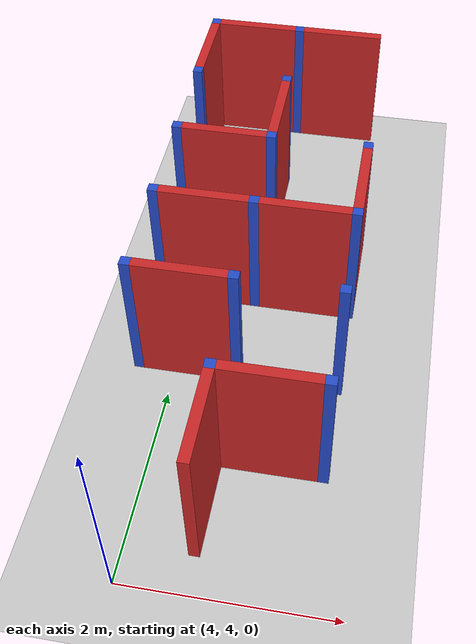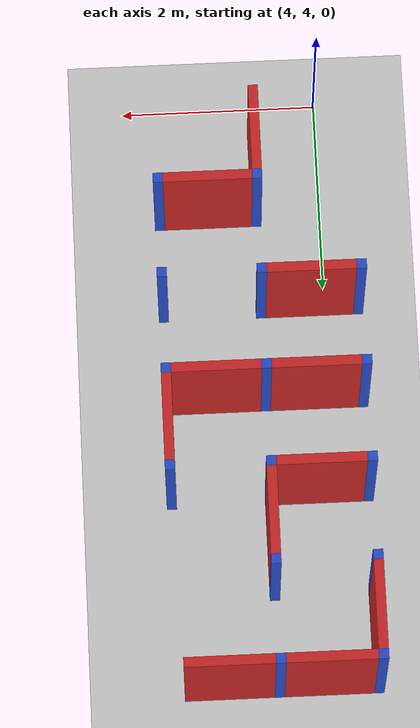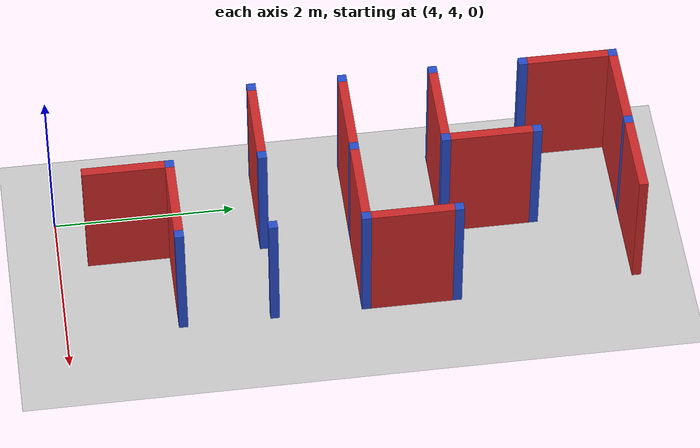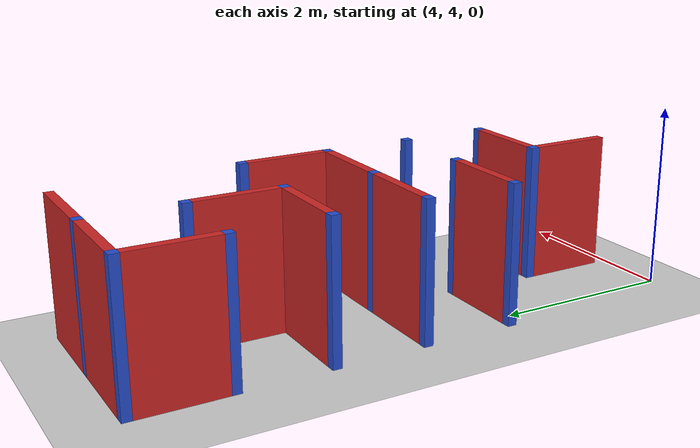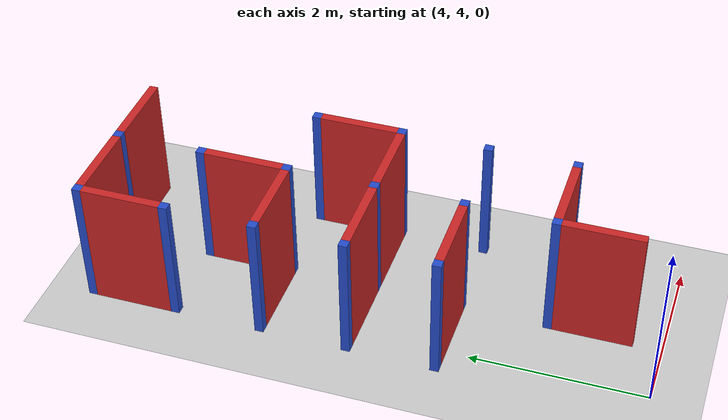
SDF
<sdf version="1.7">
 <world name="default">
  <model name="ground_plane">
   <static>1</static>
   <link name="link">
    <collision name="collision">
     <geometry><plane><normal>0 0 1</normal><size>100 100</size></plane></geometry>
     <surface><friction><ode><mu>100</mu><mu2>50</mu2></ode></friction></surface>
    </collision>
    <visual name="visual">
     <cast_shadows>0</cast_shadows>
     <geometry><plane><normal>0 0 1</normal><size>100 100</size></plane></geometry>
     <material>
      <script><uri>file://media/materials/scripts/gazebo.material</uri><name>Gazebo/Grey</name></script>
     </material>
    </visual>
   </link>
  </model>
  <model name="maze_demo">
   <link name="Joint_10_-10">
    <pose>10 -10 0 0 -0 0</pose>
    <visual name="Wall_2_Visual">
     <pose>0 0 0.75 0 -0 0</pose>
     <geometry><box><size>0.1 0.1 1.5</size></box></geometry>
     <material>
      <script><uri>file://media/materials/scripts/gazebo.material</uri><name>Gazebo/Blue</name></script>
      <ambient>0.996078 0.47451 0.0196078 1</ambient>
      <shader type="pixel"/>
     </material>
     <meta><layer>0</layer></meta>
    </visual>
    <collision name="Wall_2_Collision">
     <pose>0 0 0.75 0 -0 0</pose>
     <geometry><box><size>0.1 0.1 1.5</size></box></geometry>
     <surface>
      <friction>
       <ode><mu>1</mu><mu2>1</mu2><fdir1>0 0 0</fdir1><slip1>0</slip1><slip2>0</slip2></ode>
       <torsional>
        <coefficient>1</coefficient>
        <patch_radius>0</patch_radius>
        <surface_radius>0</surface_radius>
        <use_patch_radius>1</use_patch_radius>
        <ode><slip>0</slip></ode>
       </torsional>
      </friction>
      <bounce><restitution_coefficient>0</restitution_coefficient><threshold>1e+06</threshold></bounce>
      <contact>
       <collide_without_contact>0</collide_without_contact>
       <collide_without_contact_bitmask>1</collide_without_contact_bitmask>
       <collide_bitmask>1</collide_bitmask>
       <ode>
        <soft_cfm>0</soft_cfm>
        <soft_erp>0.2</soft_erp>
        <kp>1e+13</kp>
        <kd>1</kd>
        <max_vel>0.01</max_vel>
        <min_depth>0</min_depth>
       </ode>
       <bullet>
        <split_impulse>1</split_impulse>
        <split_impulse_penetration_threshold>-0.01</split_impulse_penetration_threshold>
        <soft_cfm>0</soft_cfm>
        <soft_erp>0.2</soft_erp>
        <kp>1e+13</kp>
        <kd>1</kd>
       </bullet>
      </contact>
     </surface>
    </collision>
   </link>
   <link name="Joint_10_-5">
    <pose>10 -5 0 0 -0 0</pose>
    <visual name="Wall_2_Visual">
     <pose>0 0 0.75 0 -0 0</pose>
     <geometry><box><size>0.1 0.1 1.5</size></box></geometry>
     <material>
      <script><uri>file://media/materials/scripts/gazebo.material</uri><name>Gazebo/Blue</name></script>
      <ambient>0.996078 0.47451 0.0196078 1</ambient>
      <shader type="pixel"/>
     </material>
     <meta><layer>0</layer></meta>
    </visual>
    <collision name="Wall_2_Collision">
     <pose>0 0 0.75 0 -0 0</pose>
     <geometry><box><size>0.1 0.1 1.5</size></box></geometry>
     <surface>
      <friction>
       <ode><mu>1</mu><mu2>1</mu2><fdir1>0 0 0</fdir1><slip1>0</slip1><slip2>0</slip2></ode>
       <torsional>
        <coefficient>1</coefficient>
        <patch_radius>0</patch_radius>
        <surface_radius>0</surface_radius>
        <use_patch_radius>1</use_patch_radius>
        <ode><slip>0</slip></ode>
       </torsional>
      </friction>
      <bounce><restitution_coefficient>0</restitution_coefficient><threshold>1e+06</threshold></bounce>
      <contact>
       <collide_without_contact>0</collide_without_contact>
       <collide_without_contact_bitmask>1</collide_without_contact_bitmask>
       <collide_bitmask>1</collide_bitmask>
       <ode>
        <soft_cfm>0</soft_cfm>
        <soft_erp>0.2</soft_erp>
        <kp>1e+13</kp>
        <kd>1</kd>
        <max_vel>0.01</max_vel>
        <min_depth>0</min_depth>
       </ode>
       <bullet>
        <split_impulse>1</split_impulse>
        <split_impulse_penetration_threshold>-0.01</split_impulse_penetration_threshold>
        <soft_cfm>0</soft_cfm>
        <soft_erp>0.2</soft_erp>
        <kp>1e+13</kp>
        <kd>1</kd>
       </bullet>
      </contact>
     </surface>
    </collision>
   </link>
   <link name="Joint_10_-6">
    <pose>10 -6 0 0 -0 0</pose>
    <visual name="Wall_2_Visual">
     <pose>0 0 0.75 0 -0 0</pose>
     <geometry><box><size>0.1 0.1 1.5</size></box></geometry>
     <material>
      <script><uri>file://media/materials/scripts/gazebo.material</uri><name>Gazebo/Blue</name></script>
      <ambient>0.996078 0.47451 0.0196078 1</ambient>
      <shader type="pixel"/>
     </material>
     <meta><layer>0</layer></meta>
    </visual>
    <collision name="Wall_2_Collision">
     <pose>0 0 0.75 0 -0 0</pose>
     <geometry><box><size>0.1 0.1 1.5</size></box></geometry>
     <surface>
      <friction>
       <ode><mu>1</mu><mu2>1</mu2><fdir1>0 0 0</fdir1><slip1>0</slip1><slip2>0</slip2></ode>
       <torsional>
        <coefficient>1</coefficient>
        <patch_radius>0</patch_radius>
        <surface_radius>0</surface_radius>
        <use_patch_radius>1</use_patch_radius>
        <ode><slip>0</slip></ode>
       </torsional>
      </friction>
      <bounce><restitution_coefficient>0</restitution_coefficient><threshold>1e+06</threshold></bounce>
      <contact>
       <collide_without_contact>0</collide_without_contact>
       <collide_without_contact_bitmask>1</collide_without_contact_bitmask>
       <collide_bitmask>1</collide_bitmask>
       <ode>
        <soft_cfm>0</soft_cfm>
        <soft_erp>0.2</soft_erp>
        <kp>1e+13</kp>
        <kd>1</kd>
        <max_vel>0.01</max_vel>
        <min_depth>0</min_depth>
       </ode>
       <bullet>
        <split_impulse>1</split_impulse>
        <split_impulse_penetration_threshold>-0.01</split_impulse_penetration_threshold>
        <soft_cfm>0</soft_cfm>
        <soft_erp>0.2</soft_erp>
        <kp>1e+13</kp>
        <kd>1</kd>
       </bullet>
      </contact>
     </surface>
    </collision>
   </link>
   <link name="Joint_10_-7">
    <pose>10 -7 0 0 -0 0</pose>
    <visual name="Wall_2_Visual">
     <pose>0 0 0.75 0 -0 0</pose>
     <geometry><box><size>0.1 0.1 1.5</size></box></geometry>
     <material>
      <script><uri>file://media/materials/scripts/gazebo.material</uri><name>Gazebo/Blue</name></script>
      <ambient>0.996078 0.47451 0.0196078 1</ambient>
      <shader type="pixel"/>
     </material>
     <meta><layer>0</layer></meta>
    </visual>
    <collision name="Wall_2_Collision">
     <pose>0 0 0.75 0 -0 0</pose>
     <geometry><box><size>0.1 0.1 1.5</size></box></geometry>
     <surface>
      <friction>
       <ode><mu>1</mu><mu2>1</mu2><fdir1>0 0 0</fdir1><slip1>0</slip1><slip2>0</slip2></ode>
       <torsional>
        <coefficient>1</coefficient>
        <patch_radius>0</patch_radius>
        <surface_radius>0</surface_radius>
        <use_patch_radius>1</use_patch_radius>
        <ode><slip>0</slip></ode>
       </torsional>
      </friction>
      <bounce><restitution_coefficient>0</restitution_coefficient><threshold>1e+06</threshold></bounce>
      <contact>
       <collide_without_contact>0</collide_without_contact>
       <collide_without_contact_bitmask>1</collide_without_contact_bitmask>
       <collide_bitmask>1</collide_bitmask>
       <ode>
        <soft_cfm>0</soft_cfm>
        <soft_erp>0.2</soft_erp>
        <kp>1e+13</kp>
        <kd>1</kd>
        <max_vel>0.01</max_vel>
        <min_depth>0</min_depth>
       </ode>
       <bullet>
        <split_impulse>1</split_impulse>
        <split_impulse_penetration_threshold>-0.01</split_impulse_penetration_threshold>
        <soft_cfm>0</soft_cfm>
        <soft_erp>0.2</soft_erp>
        <kp>1e+13</kp>
        <kd>1</kd>
       </bullet>
      </contact>
     </surface>
    </collision>
   </link>
   <link name="Joint_10_-8">
    <pose>10 -8 0 0 -0 0</pose>
    <visual name="Wall_2_Visual">
     <pose>0 0 0.75 0 -0 0</pose>
     <geometry><box><size>0.1 0.1 1.5</size></box></geometry>
     <material>
      <script><uri>file://media/materials/scripts/gazebo.material</uri><name>Gazebo/Blue</name></script>
      <ambient>0.996078 0.47451 0.0196078 1</ambient>
      <shader type="pixel"/>
     </material>
     <meta><layer>0</layer></meta>
    </visual>
    <collision name="Wall_2_Collision">
     <pose>0 0 0.75 0 -0 0</pose>
     <geometry><box><size>0.1 0.1 1.5</size></box></geometry>
     <surface>
      <friction>
       <ode><mu>1</mu><mu2>1</mu2><fdir1>0 0 0</fdir1><slip1>0</slip1><slip2>0</slip2></ode>
       <torsional>
        <coefficient>1</coefficient>
        <patch_radius>0</patch_radius>
        <surface_radius>0</surface_radius>
        <use_patch_radius>1</use_patch_radius>
        <ode><slip>0</slip></ode>
       </torsional>
      </friction>
      <bounce><restitution_coefficient>0</restitution_coefficient><threshold>1e+06</threshold></bounce>
      <contact>
       <collide_without_contact>0</collide_without_contact>
       <collide_without_contact_bitmask>1</collide_without_contact_bitmask>
       <collide_bitmask>1</collide_bitmask>
       <ode>
        <soft_cfm>0</soft_cfm>
        <soft_erp>0.2</soft_erp>
        <kp>1e+13</kp>
        <kd>1</kd>
        <max_vel>0.01</max_vel>
        <min_depth>0</min_depth>
       </ode>
       <bullet>
        <split_impulse>1</split_impulse>
        <split_impulse_penetration_threshold>-0.01</split_impulse_penetration_threshold>
        <soft_cfm>0</soft_cfm>
        <soft_erp>0.2</soft_erp>
        <kp>1e+13</kp>
        <kd>1</kd>
       </bullet>
      </contact>
     </surface>
    </collision>
   </link>
   <link name="Joint_10_-9">
    <pose>10 -9 0 0 -0 0</pose>
    <visual name="Wall_2_Visual">
     <pose>0 0 0.75 0 -0 0</pose>
     <geometry><box><size>0.1 0.1 1.5</size></box></geometry>
     <material>
      <script><uri>file://media/materials/scripts/gazebo.material</uri><name>Gazebo/Blue</name></script>
      <ambient>0.996078 0.47451 0.0196078 1</ambient>
      <shader type="pixel"/>
     </material>
     <meta><layer>0</layer></meta>
    </visual>
    <collision name="Wall_2_Collision">
     <pose>0 0 0.75 0 -0 0</pose>
     <geometry><box><size>0.1 0.1 1.5</size></box></geometry>
     <surface>
      <friction>
       <ode><mu>1</mu><mu2>1</mu2><fdir1>0 0 0</fdir1><slip1>0</slip1><slip2>0</slip2></ode>
       <torsional>
        <coefficient>1</coefficient>
        <patch_radius>0</patch_radius>
        <surface_radius>0</surface_radius>
        <use_patch_radius>1</use_patch_radius>
        <ode><slip>0</slip></ode>
       </torsional>
      </friction>
      <bounce><restitution_coefficient>0</restitution_coefficient><threshold>1e+06</threshold></bounce>
      <contact>
       <collide_without_contact>0</collide_without_contact>
       <collide_without_contact_bitmask>1</collide_without_contact_bitmask>
       <collide_bitmask>1</collide_bitmask>
       <ode>
        <soft_cfm>0</soft_cfm>
        <soft_erp>0.2</soft_erp>
        <kp>1e+13</kp>
        <kd>1</kd>
        <max_vel>0.01</max_vel>
        <min_depth>0</min_depth>
       </ode>
       <bullet>
        <split_impulse>1</split_impulse>
        <split_impulse_penetration_threshold>-0.01</split_impulse_penetration_threshold>
        <soft_cfm>0</soft_cfm>
        <soft_erp>0.2</soft_erp>
        <kp>1e+13</kp>
        <kd>1</kd>
       </bullet>
      </contact>
     </surface>
    </collision>
   </link>
   <link name="Joint_11_-10">
    <pose>11 -10 0 0 -0 0</pose>
    <visual name="Wall_2_Visual">
     <pose>0 0 0.75 0 -0 0</pose>
     <geometry><box><size>0.1 0.1 1.5</size></box></geometry>
     <material>
      <script><uri>file://media/materials/scripts/gazebo.material</uri><name>Gazebo/Blue</name></script>
      <ambient>0.996078 0.47451 0.0196078 1</ambient>
      <shader type="pixel"/>
     </material>
     <meta><layer>0</layer></meta>
    </visual>
    <collision name="Wall_2_Collision">
     <pose>0 0 0.75 0 -0 0</pose>
     <geometry><box><size>0.1 0.1 1.5</size></box></geometry>
     <surface>
      <friction>
       <ode><mu>1</mu><mu2>1</mu2><fdir1>0 0 0</fdir1><slip1>0</slip1><slip2>0</slip2></ode>
       <torsional>
        <coefficient>1</coefficient>
        <patch_radius>0</patch_radius>
        <surface_radius>0</surface_radius>
        <use_patch_radius>1</use_patch_radius>
        <ode><slip>0</slip></ode>
       </torsional>
      </friction>
      <bounce><restitution_coefficient>0</restitution_coefficient><threshold>1e+06</threshold></bounce>
      <contact>
       <collide_without_contact>0</collide_without_contact>
       <collide_without_contact_bitmask>1</collide_without_contact_bitmask>
       <collide_bitmask>1</collide_bitmask>
       <ode>
        <soft_cfm>0</soft_cfm>
        <soft_erp>0.2</soft_erp>
        <kp>1e+13</kp>
        <kd>1</kd>
        <max_vel>0.01</max_vel>
        <min_depth>0</min_depth>
       </ode>
       <bullet>
        <split_impulse>1</split_impulse>
        <split_impulse_penetration_threshold>-0.01</split_impulse_penetration_threshold>
        <soft_cfm>0</soft_cfm>
        <soft_erp>0.2</soft_erp>
        <kp>1e+13</kp>
        <kd>1</kd>
       </bullet>
      </contact>
     </surface>
    </collision>
   </link>
   <link name="Joint_11_-7">
    <pose>11 -7 0 0 -0 0</pose>
    <visual name="Wall_2_Visual">
     <pose>0 0 0.75 0 -0 0</pose>
     <geometry><box><size>0.1 0.1 1.5</size></box></geometry>
     <material>
      <script><uri>file://media/materials/scripts/gazebo.material</uri><name>Gazebo/Blue</name></script>
      <ambient>0.996078 0.47451 0.0196078 1</ambient>
      <shader type="pixel"/>
     </material>
     <meta><layer>0</layer></meta>
    </visual>
    <collision name="Wall_2_Collision">
     <pose>0 0 0.75 0 -0 0</pose>
     <geometry><box><size>0.1 0.1 1.5</size></box></geometry>
     <surface>
      <friction>
       <ode><mu>1</mu><mu2>1</mu2><fdir1>0 0 0</fdir1><slip1>0</slip1><slip2>0</slip2></ode>
       <torsional>
        <coefficient>1</coefficient>
        <patch_radius>0</patch_radius>
        <surface_radius>0</surface_radius>
        <use_patch_radius>1</use_patch_radius>
        <ode><slip>0</slip></ode>
       </torsional>
      </friction>
      <bounce><restitution_coefficient>0</restitution_coefficient><threshold>1e+06</threshold></bounce>
      <contact>
       <collide_without_contact>0</collide_without_contact>
       <collide_without_contact_bitmask>1</collide_without_contact_bitmask>
       <collide_bitmask>1</collide_bitmask>
       <ode>
        <soft_cfm>0</soft_cfm>
        <soft_erp>0.2</soft_erp>
        <kp>1e+13</kp>
        <kd>1</kd>
        <max_vel>0.01</max_vel>
        <min_depth>0</min_depth>
       </ode>
       <bullet>
        <split_impulse>1</split_impulse>
        <split_impulse_penetration_threshold>-0.01</split_impulse_penetration_threshold>
        <soft_cfm>0</soft_cfm>
        <soft_erp>0.2</soft_erp>
        <kp>1e+13</kp>
        <kd>1</kd>
       </bullet>
      </contact>
     </surface>
    </collision>
   </link>
   <link name="Joint_11_-8">
    <pose>11 -8 0 0 -0 0</pose>
    <visual name="Wall_2_Visual">
     <pose>0 0 0.75 0 -0 0</pose>
     <geometry><box><size>0.1 0.1 1.5</size></box></geometry>
     <material>
      <script><uri>file://media/materials/scripts/gazebo.material</uri><name>Gazebo/Blue</name></script>
      <ambient>0.996078 0.47451 0.0196078 1</ambient>
      <shader type="pixel"/>
     </material>
     <meta><layer>0</layer></meta>
    </visual>
    <collision name="Wall_2_Collision">
     <pose>0 0 0.75 0 -0 0</pose>
     <geometry><box><size>0.1 0.1 1.5</size></box></geometry>
     <surface>
      <friction>
       <ode><mu>1</mu><mu2>1</mu2><fdir1>0 0 0</fdir1><slip1>0</slip1><slip2>0</slip2></ode>
       <torsional>
        <coefficient>1</coefficient>
        <patch_radius>0</patch_radius>
        <surface_radius>0</surface_radius>
        <use_patch_radius>1</use_patch_radius>
        <ode><slip>0</slip></ode>
       </torsional>
      </friction>
      <bounce><restitution_coefficient>0</restitution_coefficient><threshold>1e+06</threshold></bounce>
      <contact>
       <collide_without_contact>0</collide_without_contact>
       <collide_without_contact_bitmask>1</collide_without_contact_bitmask>
       <collide_bitmask>1</collide_bitmask>
       <ode>
        <soft_cfm>0</soft_cfm>
        <soft_erp>0.2</soft_erp>
        <kp>1e+13</kp>
        <kd>1</kd>
        <max_vel>0.01</max_vel>
        <min_depth>0</min_depth>
       </ode>
       <bullet>
        <split_impulse>1</split_impulse>
        <split_impulse_penetration_threshold>-0.01</split_impulse_penetration_threshold>
        <soft_cfm>0</soft_cfm>
        <soft_erp>0.2</soft_erp>
        <kp>1e+13</kp>
        <kd>1</kd>
       </bullet>
      </contact>
     </surface>
    </collision>
   </link>
   <link name="Joint_11_-9">
    <pose>11 -9 0 0 -0 0</pose>
    <visual name="Wall_2_Visual">
     <pose>0 0 0.75 0 -0 0</pose>
     <geometry><box><size>0.1 0.1 1.5</size></box></geometry>
     <material>
      <script><uri>file://media/materials/scripts/gazebo.material</uri><name>Gazebo/Blue</name></script>
      <ambient>0.996078 0.47451 0.0196078 1</ambient>
      <shader type="pixel"/>
     </material>
     <meta><layer>0</layer></meta>
    </visual>
    <collision name="Wall_2_Collision">
     <pose>0 0 0.75 0 -0 0</pose>
     <geometry><box><size>0.1 0.1 1.5</size></box></geometry>
     <surface>
      <friction>
       <ode><mu>1</mu><mu2>1</mu2><fdir1>0 0 0</fdir1><slip1>0</slip1><slip2>0</slip2></ode>
       <torsional>
        <coefficient>1</coefficient>
        <patch_radius>0</patch_radius>
        <surface_radius>0</surface_radius>
        <use_patch_radius>1</use_patch_radius>
        <ode><slip>0</slip></ode>
       </torsional>
      </friction>
      <bounce><restitution_coefficient>0</restitution_coefficient><threshold>1e+06</threshold></bounce>
      <contact>
       <collide_without_contact>0</collide_without_contact>
       <collide_without_contact_bitmask>1</collide_without_contact_bitmask>
       <collide_bitmask>1</collide_bitmask>
       <ode>
        <soft_cfm>0</soft_cfm>
        <soft_erp>0.2</soft_erp>
        <kp>1e+13</kp>
        <kd>1</kd>
        <max_vel>0.01</max_vel>
        <min_depth>0</min_depth>
       </ode>
       <bullet>
        <split_impulse>1</split_impulse>
        <split_impulse_penetration_threshold>-0.01</split_impulse_penetration_threshold>
        <soft_cfm>0</soft_cfm>
        <soft_erp>0.2</soft_erp>
        <kp>1e+13</kp>
        <kd>1</kd>
       </bullet>
      </contact>
     </surface>
    </collision>
   </link>
   <link name="Joint_9_-5">
    <pose>9 -5 0 0 -0 0</pose>
    <visual name="Wall_2_Visual">
     <pose>0 0 0.75 0 -0 0</pose>
     <geometry><box><size>0.1 0.1 1.5</size></box></geometry>
     <material>
      <script><uri>file://media/materials/scripts/gazebo.material</uri><name>Gazebo/Blue</name></script>
      <ambient>0.996078 0.47451 0.0196078 1</ambient>
      <shader type="pixel"/>
     </material>
     <meta><layer>0</layer></meta>
    </visual>
    <collision name="Wall_2_Collision">
     <pose>0 0 0.75 0 -0 0</pose>
     <geometry><box><size>0.1 0.1 1.5</size></box></geometry>
     <surface>
      <friction>
       <ode><mu>1</mu><mu2>1</mu2><fdir1>0 0 0</fdir1><slip1>0</slip1><slip2>0</slip2></ode>
       <torsional>
        <coefficient>1</coefficient>
        <patch_radius>0</patch_radius>
        <surface_radius>0</surface_radius>
        <use_patch_radius>1</use_patch_radius>
        <ode><slip>0</slip></ode>
       </torsional>
      </friction>
      <bounce><restitution_coefficient>0</restitution_coefficient><threshold>1e+06</threshold></bounce>
      <contact>
       <collide_without_contact>0</collide_without_contact>
       <collide_without_contact_bitmask>1</collide_without_contact_bitmask>
       <collide_bitmask>1</collide_bitmask>
       <ode>
        <soft_cfm>0</soft_cfm>
        <soft_erp>0.2</soft_erp>
        <kp>1e+13</kp>
        <kd>1</kd>
        <max_vel>0.01</max_vel>
        <min_depth>0</min_depth>
       </ode>
       <bullet>
        <split_impulse>1</split_impulse>
        <split_impulse_penetration_threshold>-0.01</split_impulse_penetration_threshold>
        <soft_cfm>0</soft_cfm>
        <soft_erp>0.2</soft_erp>
        <kp>1e+13</kp>
        <kd>1</kd>
       </bullet>
      </contact>
     </surface>
    </collision>
   </link>
   <link name="Joint_9_-6">
    <pose>9 -6 0 0 -0 0</pose>
    <visual name="Wall_2_Visual">
     <pose>0 0 0.75 0 -0 0</pose>
     <geometry><box><size>0.1 0.1 1.5</size></box></geometry>
     <material>
      <script><uri>file://media/materials/scripts/gazebo.material</uri><name>Gazebo/Blue</name></script>
      <ambient>0.996078 0.47451 0.0196078 1</ambient>
      <shader type="pixel"/>
     </material>
     <meta><layer>0</layer></meta>
    </visual>
    <collision name="Wall_2_Collision">
     <pose>0 0 0.75 0 -0 0</pose>
     <geometry><box><size>0.1 0.1 1.5</size></box></geometry>
     <surface>
      <friction>
       <ode><mu>1</mu><mu2>1</mu2><fdir1>0 0 0</fdir1><slip1>0</slip1><slip2>0</slip2></ode>
       <torsional>
        <coefficient>1</coefficient>
        <patch_radius>0</patch_radius>
        <surface_radius>0</surface_radius>
        <use_patch_radius>1</use_patch_radius>
        <ode><slip>0</slip></ode>
       </torsional>
      </friction>
      <bounce><restitution_coefficient>0</restitution_coefficient><threshold>1e+06</threshold></bounce>
      <contact>
       <collide_without_contact>0</collide_without_contact>
       <collide_without_contact_bitmask>1</collide_without_contact_bitmask>
       <collide_bitmask>1</collide_bitmask>
       <ode>
        <soft_cfm>0</soft_cfm>
        <soft_erp>0.2</soft_erp>
        <kp>1e+13</kp>
        <kd>1</kd>
        <max_vel>0.01</max_vel>
        <min_depth>0</min_depth>
       </ode>
       <bullet>
        <split_impulse>1</split_impulse>
        <split_impulse_penetration_threshold>-0.01</split_impulse_penetration_threshold>
        <soft_cfm>0</soft_cfm>
        <soft_erp>0.2</soft_erp>
        <kp>1e+13</kp>
        <kd>1</kd>
       </bullet>
      </contact>
     </surface>
    </collision>
   </link>
   <link name="Joint_9_-7">
    <pose>9 -7 0 0 -0 0</pose>
    <visual name="Wall_2_Visual">
     <pose>0 0 0.75 0 -0 0</pose>
     <geometry><box><size>0.1 0.1 1.5</size></box></geometry>
     <material>
      <script><uri>file://media/materials/scripts/gazebo.material</uri><name>Gazebo/Blue</name></script>
      <ambient>0.996078 0.47451 0.0196078 1</ambient>
      <shader type="pixel"/>
     </material>
     <meta><layer>0</layer></meta>
    </visual>
    <collision name="Wall_2_Collision">
     <pose>0 0 0.75 0 -0 0</pose>
     <geometry><box><size>0.1 0.1 1.5</size></box></geometry>
     <surface>
      <friction>
       <ode><mu>1</mu><mu2>1</mu2><fdir1>0 0 0</fdir1><slip1>0</slip1><slip2>0</slip2></ode>
       <torsional>
        <coefficient>1</coefficient>
        <patch_radius>0</patch_radius>
        <surface_radius>0</surface_radius>
        <use_patch_radius>1</use_patch_radius>
        <ode><slip>0</slip></ode>
       </torsional>
      </friction>
      <bounce><restitution_coefficient>0</restitution_coefficient><threshold>1e+06</threshold></bounce>
      <contact>
       <collide_without_contact>0</collide_without_contact>
       <collide_without_contact_bitmask>1</collide_without_contact_bitmask>
       <collide_bitmask>1</collide_bitmask>
       <ode>
        <soft_cfm>0</soft_cfm>
        <soft_erp>0.2</soft_erp>
        <kp>1e+13</kp>
        <kd>1</kd>
        <max_vel>0.01</max_vel>
        <min_depth>0</min_depth>
       </ode>
       <bullet>
        <split_impulse>1</split_impulse>
        <split_impulse_penetration_threshold>-0.01</split_impulse_penetration_threshold>
        <soft_cfm>0</soft_cfm>
        <soft_erp>0.2</soft_erp>
        <kp>1e+13</kp>
        <kd>1</kd>
       </bullet>
      </contact>
     </surface>
    </collision>
   </link>
   <link name="Joint_9_-8">
    <pose>9 -8 0 0 -0 0</pose>
    <visual name="Wall_2_Visual">
     <pose>0 0 0.75 0 -0 0</pose>
     <geometry><box><size>0.1 0.1 1.5</size></box></geometry>
     <material>
      <script><uri>file://media/materials/scripts/gazebo.material</uri><name>Gazebo/Blue</name></script>
      <ambient>0.996078 0.47451 0.0196078 1</ambient>
      <shader type="pixel"/>
     </material>
     <meta><layer>0</layer></meta>
    </visual>
    <collision name="Wall_2_Collision">
     <pose>0 0 0.75 0 -0 0</pose>
     <geometry><box><size>0.1 0.1 1.5</size></box></geometry>
     <surface>
      <friction>
       <ode><mu>1</mu><mu2>1</mu2><fdir1>0 0 0</fdir1><slip1>0</slip1><slip2>0</slip2></ode>
       <torsional>
        <coefficient>1</coefficient>
        <patch_radius>0</patch_radius>
        <surface_radius>0</surface_radius>
        <use_patch_radius>1</use_patch_radius>
        <ode><slip>0</slip></ode>
       </torsional>
      </friction>
      <bounce><restitution_coefficient>0</restitution_coefficient><threshold>1e+06</threshold></bounce>
      <contact>
       <collide_without_contact>0</collide_without_contact>
       <collide_without_contact_bitmask>1</collide_without_contact_bitmask>
       <collide_bitmask>1</collide_bitmask>
       <ode>
        <soft_cfm>0</soft_cfm>
        <soft_erp>0.2</soft_erp>
        <kp>1e+13</kp>
        <kd>1</kd>
        <max_vel>0.01</max_vel>
        <min_depth>0</min_depth>
       </ode>
       <bullet>
        <split_impulse>1</split_impulse>
        <split_impulse_penetration_threshold>-0.01</split_impulse_penetration_threshold>
        <soft_cfm>0</soft_cfm>
        <soft_erp>0.2</soft_erp>
        <kp>1e+13</kp>
        <kd>1</kd>
       </bullet>
      </contact>
     </surface>
    </collision>
   </link>
   <link name="Joint_9_-9">
    <pose>9 -9 0 0 -0 0</pose>
    <visual name="Wall_2_Visual">
     <pose>0 0 0.75 0 -0 0</pose>
     <geometry><box><size>0.1 0.1 1.5</size></box></geometry>
     <material>
      <script><uri>file://media/materials/scripts/gazebo.material</uri><name>Gazebo/Blue</name></script>
      <ambient>0.996078 0.47451 0.0196078 1</ambient>
      <shader type="pixel"/>
     </material>
     <meta><layer>0</layer></meta>
    </visual>
    <collision name="Wall_2_Collision">
     <pose>0 0 0.75 0 -0 0</pose>
     <geometry><box><size>0.1 0.1 1.5</size></box></geometry>
     <surface>
      <friction>
       <ode><mu>1</mu><mu2>1</mu2><fdir1>0 0 0</fdir1><slip1>0</slip1><slip2>0</slip2></ode>
       <torsional>
        <coefficient>1</coefficient>
        <patch_radius>0</patch_radius>
        <surface_radius>0</surface_radius>
        <use_patch_radius>1</use_patch_radius>
        <ode><slip>0</slip></ode>
       </torsional>
      </friction>
      <bounce><restitution_coefficient>0</restitution_coefficient><threshold>1e+06</threshold></bounce>
      <contact>
       <collide_without_contact>0</collide_without_contact>
       <collide_without_contact_bitmask>1</collide_without_contact_bitmask>
       <collide_bitmask>1</collide_bitmask>
       <ode>
        <soft_cfm>0</soft_cfm>
        <soft_erp>0.2</soft_erp>
        <kp>1e+13</kp>
        <kd>1</kd>
        <max_vel>0.01</max_vel>
        <min_depth>0</min_depth>
       </ode>
       <bullet>
        <split_impulse>1</split_impulse>
        <split_impulse_penetration_threshold>-0.01</split_impulse_penetration_threshold>
        <soft_cfm>0</soft_cfm>
        <soft_erp>0.2</soft_erp>
        <kp>1e+13</kp>
        <kd>1</kd>
       </bullet>
      </contact>
     </surface>
    </collision>
   </link>
   <link name="Wall_10_10_h">
    <pose>10.5 -10 0 0 -0 0</pose>
    <visual name="Wall_0_Visual">
     <pose>0 0 0.75 0 -0 0</pose>
     <geometry><box><size>0.9 0.1 1.5</size></box></geometry>
     <material>
      <script><uri>file://media/materials/scripts/gazebo.material</uri><name>Gazebo/Red</name></script>
      <ambient>0.921569 0.807843 0.615686 1</ambient>
      <shader type="pixel"/>
     </material>
     <meta><layer>0</layer></meta>
    </visual>
    <collision name="Wall_0_Collision">
     <pose>0 0 0.75 0 -0 0</pose>
     <geometry><box><size>0.9 0.1 1.5</size></box></geometry>
     <surface>
      <friction>
       <ode><mu>1</mu><mu2>1</mu2><fdir1>0 0 0</fdir1><slip1>0</slip1><slip2>0</slip2></ode>
       <torsional>
        <coefficient>1</coefficient>
        <patch_radius>0</patch_radius>
        <surface_radius>0</surface_radius>
        <use_patch_radius>1</use_patch_radius>
        <ode><slip>0</slip></ode>
       </torsional>
      </friction>
      <bounce><restitution_coefficient>0</restitution_coefficient><threshold>1e+06</threshold></bounce>
      <contact>
       <collide_without_contact>0</collide_without_contact>
       <collide_without_contact_bitmask>1</collide_without_contact_bitmask>
       <collide_bitmask>1</collide_bitmask>
       <ode>
        <soft_cfm>0</soft_cfm>
        <soft_erp>0.2</soft_erp>
        <kp>1e+13</kp>
        <kd>1</kd>
        <max_vel>0.01</max_vel>
        <min_depth>0</min_depth>
       </ode>
       <bullet>
        <split_impulse>1</split_impulse>
        <split_impulse_penetration_threshold>-0.01</split_impulse_penetration_threshold>
        <soft_cfm>0</soft_cfm>
        <soft_erp>0.2</soft_erp>
        <kp>1e+13</kp>
        <kd>1</kd>
       </bullet>
      </contact>
     </surface>
    </collision>
   </link>
   <link name="Wall_10_10_v">
    <pose>10 -10.5 0 0 -0 1.5708</pose>
    <visual name="Wall_0_Visual">
     <pose>0 0 0.75 0 -0 0</pose>
     <geometry><box><size>0.9 0.1 1.5</size></box></geometry>
     <material>
      <script><uri>file://media/materials/scripts/gazebo.material</uri><name>Gazebo/Red</name></script>
      <ambient>0.921569 0.807843 0.615686 1</ambient>
      <shader type="pixel"/>
     </material>
     <meta><layer>0</layer></meta>
    </visual>
    <collision name="Wall_0_Collision">
     <pose>0 0 0.75 0 -0 0</pose>
     <geometry><box><size>0.9 0.1 1.5</size></box></geometry>
     <surface>
      <friction>
       <ode><mu>1</mu><mu2>1</mu2><fdir1>0 0 0</fdir1><slip1>0</slip1><slip2>0</slip2></ode>
       <torsional>
        <coefficient>1</coefficient>
        <patch_radius>0</patch_radius>
        <surface_radius>0</surface_radius>
        <use_patch_radius>1</use_patch_radius>
        <ode><slip>0</slip></ode>
       </torsional>
      </friction>
      <bounce><restitution_coefficient>0</restitution_coefficient><threshold>1e+06</threshold></bounce>
      <contact>
       <collide_without_contact>0</collide_without_contact>
       <collide_without_contact_bitmask>1</collide_without_contact_bitmask>
       <collide_bitmask>1</collide_bitmask>
       <ode>
        <soft_cfm>0</soft_cfm>
        <soft_erp>0.2</soft_erp>
        <kp>1e+13</kp>
        <kd>1</kd>
        <max_vel>0.01</max_vel>
        <min_depth>0</min_depth>
       </ode>
       <bullet>
        <split_impulse>1</split_impulse>
        <split_impulse_penetration_threshold>-0.01</split_impulse_penetration_threshold>
        <soft_cfm>0</soft_cfm>
        <soft_erp>0.2</soft_erp>
        <kp>1e+13</kp>
        <kd>1</kd>
       </bullet>
      </contact>
     </surface>
    </collision>
   </link>
   <link name="Wall_10_5_h">
    <pose>10.5 -5 0 0 -0 0</pose>
    <visual name="Wall_0_Visual">
     <pose>0 0 0.75 0 -0 0</pose>
     <geometry><box><size>0.9 0.1 1.5</size></box></geometry>
     <material>
      <script><uri>file://media/materials/scripts/gazebo.material</uri><name>Gazebo/Red</name></script>
      <ambient>0.921569 0.807843 0.615686 1</ambient>
      <shader type="pixel"/>
     </material>
     <meta><layer>0</layer></meta>
    </visual>
    <collision name="Wall_0_Collision">
     <pose>0 0 0.75 0 -0 0</pose>
     <geometry><box><size>0.9 0.1 1.5</size></box></geometry>
     <surface>
      <friction>
       <ode><mu>1</mu><mu2>1</mu2><fdir1>0 0 0</fdir1><slip1>0</slip1><slip2>0</slip2></ode>
       <torsional>
        <coefficient>1</coefficient>
        <patch_radius>0</patch_radius>
        <surface_radius>0</surface_radius>
        <use_patch_radius>1</use_patch_radius>
        <ode><slip>0</slip></ode>
       </torsional>
      </friction>
      <bounce><restitution_coefficient>0</restitution_coefficient><threshold>1e+06</threshold></bounce>
      <contact>
       <collide_without_contact>0</collide_without_contact>
       <collide_without_contact_bitmask>1</collide_without_contact_bitmask>
       <collide_bitmask>1</collide_bitmask>
       <ode>
        <soft_cfm>0</soft_cfm>
        <soft_erp>0.2</soft_erp>
        <kp>1e+13</kp>
        <kd>1</kd>
        <max_vel>0.01</max_vel>
        <min_depth>0</min_depth>
       </ode>
       <bullet>
        <split_impulse>1</split_impulse>
        <split_impulse_penetration_threshold>-0.01</split_impulse_penetration_threshold>
        <soft_cfm>0</soft_cfm>
        <soft_erp>0.2</soft_erp>
        <kp>1e+13</kp>
        <kd>1</kd>
       </bullet>
      </contact>
     </surface>
    </collision>
   </link>
   <link name="Wall_10_6_v">
    <pose>10 -6.5 0 0 -0 1.5708</pose>
    <visual name="Wall_0_Visual">
     <pose>0 0 0.75 0 -0 0</pose>
     <geometry><box><size>0.9 0.1 1.5</size></box></geometry>
     <material>
      <script><uri>file://media/materials/scripts/gazebo.material</uri><name>Gazebo/Red</name></script>
      <ambient>0.921569 0.807843 0.615686 1</ambient>
      <shader type="pixel"/>
     </material>
     <meta><layer>0</layer></meta>
    </visual>
    <collision name="Wall_0_Collision">
     <pose>0 0 0.75 0 -0 0</pose>
     <geometry><box><size>0.9 0.1 1.5</size></box></geometry>
     <surface>
      <friction>
       <ode><mu>1</mu><mu2>1</mu2><fdir1>0 0 0</fdir1><slip1>0</slip1><slip2>0</slip2></ode>
       <torsional>
        <coefficient>1</coefficient>
        <patch_radius>0</patch_radius>
        <surface_radius>0</surface_radius>
        <use_patch_radius>1</use_patch_radius>
        <ode><slip>0</slip></ode>
       </torsional>
      </friction>
      <bounce><restitution_coefficient>0</restitution_coefficient><threshold>1e+06</threshold></bounce>
      <contact>
       <collide_without_contact>0</collide_without_contact>
       <collide_without_contact_bitmask>1</collide_without_contact_bitmask>
       <collide_bitmask>1</collide_bitmask>
       <ode>
        <soft_cfm>0</soft_cfm>
        <soft_erp>0.2</soft_erp>
        <kp>1e+13</kp>
        <kd>1</kd>
        <max_vel>0.01</max_vel>
        <min_depth>0</min_depth>
       </ode>
       <bullet>
        <split_impulse>1</split_impulse>
        <split_impulse_penetration_threshold>-0.01</split_impulse_penetration_threshold>
        <soft_cfm>0</soft_cfm>
        <soft_erp>0.2</soft_erp>
        <kp>1e+13</kp>
        <kd>1</kd>
       </bullet>
      </contact>
     </surface>
    </collision>
   </link>
   <link name="Wall_10_8_h">
    <pose>10.5 -8 0 0 -0 0</pose>
    <visual name="Wall_0_Visual">
     <pose>0 0 0.75 0 -0 0</pose>
     <geometry><box><size>0.9 0.1 1.5</size></box></geometry>
     <material>
      <script><uri>file://media/materials/scripts/gazebo.material</uri><name>Gazebo/Red</name></script>
      <ambient>0.921569 0.807843 0.615686 1</ambient>
      <shader type="pixel"/>
     </material>
     <meta><layer>0</layer></meta>
    </visual>
    <collision name="Wall_0_Collision">
     <pose>0 0 0.75 0 -0 0</pose>
     <geometry><box><size>0.9 0.1 1.5</size></box></geometry>
     <surface>
      <friction>
       <ode><mu>1</mu><mu2>1</mu2><fdir1>0 0 0</fdir1><slip1>0</slip1><slip2>0</slip2></ode>
       <torsional>
        <coefficient>1</coefficient>
        <patch_radius>0</patch_radius>
        <surface_radius>0</surface_radius>
        <use_patch_radius>1</use_patch_radius>
        <ode><slip>0</slip></ode>
       </torsional>
      </friction>
      <bounce><restitution_coefficient>0</restitution_coefficient><threshold>1e+06</threshold></bounce>
      <contact>
       <collide_without_contact>0</collide_without_contact>
       <collide_without_contact_bitmask>1</collide_without_contact_bitmask>
       <collide_bitmask>1</collide_bitmask>
       <ode>
        <soft_cfm>0</soft_cfm>
        <soft_erp>0.2</soft_erp>
        <kp>1e+13</kp>
        <kd>1</kd>
        <max_vel>0.01</max_vel>
        <min_depth>0</min_depth>
       </ode>
       <bullet>
        <split_impulse>1</split_impulse>
        <split_impulse_penetration_threshold>-0.01</split_impulse_penetration_threshold>
        <soft_cfm>0</soft_cfm>
        <soft_erp>0.2</soft_erp>
        <kp>1e+13</kp>
        <kd>1</kd>
       </bullet>
      </contact>
     </surface>
    </collision>
   </link>
   <link name="Wall_11_7_v">
    <pose>11 -7.5 0 0 -0 1.5708</pose>
    <visual name="Wall_0_Visual">
     <pose>0 0 0.75 0 -0 0</pose>
     <geometry><box><size>0.9 0.1 1.5</size></box></geometry>
     <material>
      <script><uri>file://media/materials/scripts/gazebo.material</uri><name>Gazebo/Red</name></script>
      <ambient>0.921569 0.807843 0.615686 1</ambient>
      <shader type="pixel"/>
     </material>
     <meta><layer>0</layer></meta>
    </visual>
    <collision name="Wall_0_Collision">
     <pose>0 0 0.75 0 -0 0</pose>
     <geometry><box><size>0.9 0.1 1.5</size></box></geometry>
     <surface>
      <friction>
       <ode><mu>1</mu><mu2>1</mu2><fdir1>0 0 0</fdir1><slip1>0</slip1><slip2>0</slip2></ode>
       <torsional>
        <coefficient>1</coefficient>
        <patch_radius>0</patch_radius>
        <surface_radius>0</surface_radius>
        <use_patch_radius>1</use_patch_radius>
        <ode><slip>0</slip></ode>
       </torsional>
      </friction>
      <bounce><restitution_coefficient>0</restitution_coefficient><threshold>1e+06</threshold></bounce>
      <contact>
       <collide_without_contact>0</collide_without_contact>
       <collide_without_contact_bitmask>1</collide_without_contact_bitmask>
       <collide_bitmask>1</collide_bitmask>
       <ode>
        <soft_cfm>0</soft_cfm>
        <soft_erp>0.2</soft_erp>
        <kp>1e+13</kp>
        <kd>1</kd>
        <max_vel>0.01</max_vel>
        <min_depth>0</min_depth>
       </ode>
       <bullet>
        <split_impulse>1</split_impulse>
        <split_impulse_penetration_threshold>-0.01</split_impulse_penetration_threshold>
        <soft_cfm>0</soft_cfm>
        <soft_erp>0.2</soft_erp>
        <kp>1e+13</kp>
        <kd>1</kd>
       </bullet>
      </contact>
     </surface>
    </collision>
   </link>
   <link name="Wall_9_5_h">
    <pose>9.5 -5 0 0 -0 0</pose>
    <visual name="Wall_0_Visual">
     <pose>0 0 0.75 0 -0 0</pose>
     <geometry><box><size>0.9 0.1 1.5</size></box></geometry>
     <material>
      <script><uri>file://media/materials/scripts/gazebo.material</uri><name>Gazebo/Red</name></script>
      <ambient>0.921569 0.807843 0.615686 1</ambient>
      <shader type="pixel"/>
     </material>
     <meta><layer>0</layer></meta>
    </visual>
    <collision name="Wall_0_Collision">
     <pose>0 0 0.75 0 -0 0</pose>
     <geometry><box><size>0.9 0.1 1.5</size></box></geometry>
     <surface>
      <friction>
       <ode><mu>1</mu><mu2>1</mu2><fdir1>0 0 0</fdir1><slip1>0</slip1><slip2>0</slip2></ode>
       <torsional>
        <coefficient>1</coefficient>
        <patch_radius>0</patch_radius>
        <surface_radius>0</surface_radius>
        <use_patch_radius>1</use_patch_radius>
        <ode><slip>0</slip></ode>
       </torsional>
      </friction>
      <bounce><restitution_coefficient>0</restitution_coefficient><threshold>1e+06</threshold></bounce>
      <contact>
       <collide_without_contact>0</collide_without_contact>
       <collide_without_contact_bitmask>1</collide_without_contact_bitmask>
       <collide_bitmask>1</collide_bitmask>
       <ode>
        <soft_cfm>0</soft_cfm>
        <soft_erp>0.2</soft_erp>
        <kp>1e+13</kp>
        <kd>1</kd>
        <max_vel>0.01</max_vel>
        <min_depth>0</min_depth>
       </ode>
       <bullet>
        <split_impulse>1</split_impulse>
        <split_impulse_penetration_threshold>-0.01</split_impulse_penetration_threshold>
        <soft_cfm>0</soft_cfm>
        <soft_erp>0.2</soft_erp>
        <kp>1e+13</kp>
        <kd>1</kd>
       </bullet>
      </contact>
     </surface>
    </collision>
   </link>
   <link name="Wall_9_5_v">
    <pose>9 -5.5 0 0 -0 1.5708</pose>
    <visual name="Wall_0_Visual">
     <pose>0 0 0.75 0 -0 0</pose>
     <geometry><box><size>0.9 0.1 1.5</size></box></geometry>
     <material>
      <script><uri>file://media/materials/scripts/gazebo.material</uri><name>Gazebo/Red</name></script>
      <ambient>0.921569 0.807843 0.615686 1</ambient>
      <shader type="pixel"/>
     </material>
     <meta><layer>0</layer></meta>
    </visual>
    <collision name="Wall_0_Collision">
     <pose>0 0 0.75 0 -0 0</pose>
     <geometry><box><size>0.9 0.1 1.5</size></box></geometry>
     <surface>
      <friction>
       <ode><mu>1</mu><mu2>1</mu2><fdir1>0 0 0</fdir1><slip1>0</slip1><slip2>0</slip2></ode>
       <torsional>
        <coefficient>1</coefficient>
        <patch_radius>0</patch_radius>
        <surface_radius>0</surface_radius>
        <use_patch_radius>1</use_patch_radius>
        <ode><slip>0</slip></ode>
       </torsional>
      </friction>
      <bounce><restitution_coefficient>0</restitution_coefficient><threshold>1e+06</threshold></bounce>
      <contact>
       <collide_without_contact>0</collide_without_contact>
       <collide_without_contact_bitmask>1</collide_without_contact_bitmask>
       <collide_bitmask>1</collide_bitmask>
       <ode>
        <soft_cfm>0</soft_cfm>
        <soft_erp>0.2</soft_erp>
        <kp>1e+13</kp>
        <kd>1</kd>
        <max_vel>0.01</max_vel>
        <min_depth>0</min_depth>
       </ode>
       <bullet>
        <split_impulse>1</split_impulse>
        <split_impulse_penetration_threshold>-0.01</split_impulse_penetration_threshold>
        <soft_cfm>0</soft_cfm>
        <soft_erp>0.2</soft_erp>
        <kp>1e+13</kp>
        <kd>1</kd>
       </bullet>
      </contact>
     </surface>
    </collision>
   </link>
   <link name="Wall_9_7_h">
    <pose>9.5 -7 0 0 -0 0</pose>
    <visual name="Wall_0_Visual">
     <pose>0 0 0.75 0 -0 0</pose>
     <geometry><box><size>0.9 0.1 1.5</size></box></geometry>
     <material>
      <script><uri>file://media/materials/scripts/gazebo.material</uri><name>Gazebo/Red</name></script>
      <ambient>0.921569 0.807843 0.615686 1</ambient>
      <shader type="pixel"/>
     </material>
     <meta><layer>0</layer></meta>
    </visual>
    <collision name="Wall_0_Collision">
     <pose>0 0 0.75 0 -0 0</pose>
     <geometry><box><size>0.9 0.1 1.5</size></box></geometry>
     <surface>
      <friction>
       <ode><mu>1</mu><mu2>1</mu2><fdir1>0 0 0</fdir1><slip1>0</slip1><slip2>0</slip2></ode>
       <torsional>
        <coefficient>1</coefficient>
        <patch_radius>0</patch_radius>
        <surface_radius>0</surface_radius>
        <use_patch_radius>1</use_patch_radius>
        <ode><slip>0</slip></ode>
       </torsional>
      </friction>
      <bounce><restitution_coefficient>0</restitution_coefficient><threshold>1e+06</threshold></bounce>
      <contact>
       <collide_without_contact>0</collide_without_contact>
       <collide_without_contact_bitmask>1</collide_without_contact_bitmask>
       <collide_bitmask>1</collide_bitmask>
       <ode>
        <soft_cfm>0</soft_cfm>
        <soft_erp>0.2</soft_erp>
        <kp>1e+13</kp>
        <kd>1</kd>
        <max_vel>0.01</max_vel>
        <min_depth>0</min_depth>
       </ode>
       <bullet>
        <split_impulse>1</split_impulse>
        <split_impulse_penetration_threshold>-0.01</split_impulse_penetration_threshold>
        <soft_cfm>0</soft_cfm>
        <soft_erp>0.2</soft_erp>
        <kp>1e+13</kp>
        <kd>1</kd>
       </bullet>
      </contact>
     </surface>
    </collision>
   </link>
   <link name="Wall_9_8_h">
    <pose>9.5 -8 0 0 -0 0</pose>
    <visual name="Wall_0_Visual">
     <pose>0 0 0.75 0 -0 0</pose>
     <geometry><box><size>0.9 0.1 1.5</size></box></geometry>
     <material>
      <script><uri>file://media/materials/scripts/gazebo.material</uri><name>Gazebo/Red</name></script>
      <ambient>0.921569 0.807843 0.615686 1</ambient>
      <shader type="pixel"/>
     </material>
     <meta><layer>0</layer></meta>
    </visual>
    <collision name="Wall_0_Collision">
     <pose>0 0 0.75 0 -0 0</pose>
     <geometry><box><size>0.9 0.1 1.5</size></box></geometry>
     <surface>
      <friction>
       <ode><mu>1</mu><mu2>1</mu2><fdir1>0 0 0</fdir1><slip1>0</slip1><slip2>0</slip2></ode>
       <torsional>
        <coefficient>1</coefficient>
        <patch_radius>0</patch_radius>
        <surface_radius>0</surface_radius>
        <use_patch_radius>1</use_patch_radius>
        <ode><slip>0</slip></ode>
       </torsional>
      </friction>
      <bounce><restitution_coefficient>0</restitution_coefficient><threshold>1e+06</threshold></bounce>
      <contact>
       <collide_without_contact>0</collide_without_contact>
       <collide_without_contact_bitmask>1</collide_without_contact_bitmask>
       <collide_bitmask>1</collide_bitmask>
       <ode>
        <soft_cfm>0</soft_cfm>
        <soft_erp>0.2</soft_erp>
        <kp>1e+13</kp>
        <kd>1</kd>
        <max_vel>0.01</max_vel>
        <min_depth>0</min_depth>
       </ode>
       <bullet>
        <split_impulse>1</split_impulse>
        <split_impulse_penetration_threshold>-0.01</split_impulse_penetration_threshold>
        <soft_cfm>0</soft_cfm>
        <soft_erp>0.2</soft_erp>
        <kp>1e+13</kp>
        <kd>1</kd>
       </bullet>
      </contact>
     </surface>
    </collision>
   </link>
   <link name="Wall_9_9_h">
    <pose>9.5 -9 0 0 -0 0</pose>
    <visual name="Wall_0_Visual">
     <pose>0 0 0.75 0 -0 0</pose>
     <geometry><box><size>0.9 0.1 1.5</size></box></geometry>
     <material>
      <script><uri>file://media/materials/scripts/gazebo.material</uri><name>Gazebo/Red</name></script>
      <ambient>0.921569 0.807843 0.615686 1</ambient>
      <shader type="pixel"/>
     </material>
     <meta><layer>0</layer></meta>
    </visual>
    <collision name="Wall_0_Collision">
     <pose>0 0 0.75 0 -0 0</pose>
     <geometry><box><size>0.9 0.1 1.5</size></box></geometry>
     <surface>
      <friction>
       <ode><mu>1</mu><mu2>1</mu2><fdir1>0 0 0</fdir1><slip1>0</slip1><slip2>0</slip2></ode>
       <torsional>
        <coefficient>1</coefficient>
        <patch_radius>0</patch_radius>
        <surface_radius>0</surface_radius>
        <use_patch_radius>1</use_patch_radius>
        <ode><slip>0</slip></ode>
       </torsional>
      </friction>
      <bounce><restitution_coefficient>0</restitution_coefficient><threshold>1e+06</threshold></bounce>
      <contact>
       <collide_without_contact>0</collide_without_contact>
       <collide_without_contact_bitmask>1</collide_without_contact_bitmask>
       <collide_bitmask>1</collide_bitmask>
       <ode>
        <soft_cfm>0</soft_cfm>
        <soft_erp>0.2</soft_erp>
        <kp>1e+13</kp>
        <kd>1</kd>
        <max_vel>0.01</max_vel>
        <min_depth>0</min_depth>
       </ode>
       <bullet>
        <split_impulse>1</split_impulse>
        <split_impulse_penetration_threshold>-0.01</split_impulse_penetration_threshold>
        <soft_cfm>0</soft_cfm>
        <soft_erp>0.2</soft_erp>
        <kp>1e+13</kp>
        <kd>1</kd>
       </bullet>
      </contact>
     </surface>
    </collision>
   </link>
   <static>1</static>
   <pose>-5.34608 15.268 0.093198 0 -0 0</pose>
  </model>
 </world>
</sdf>
